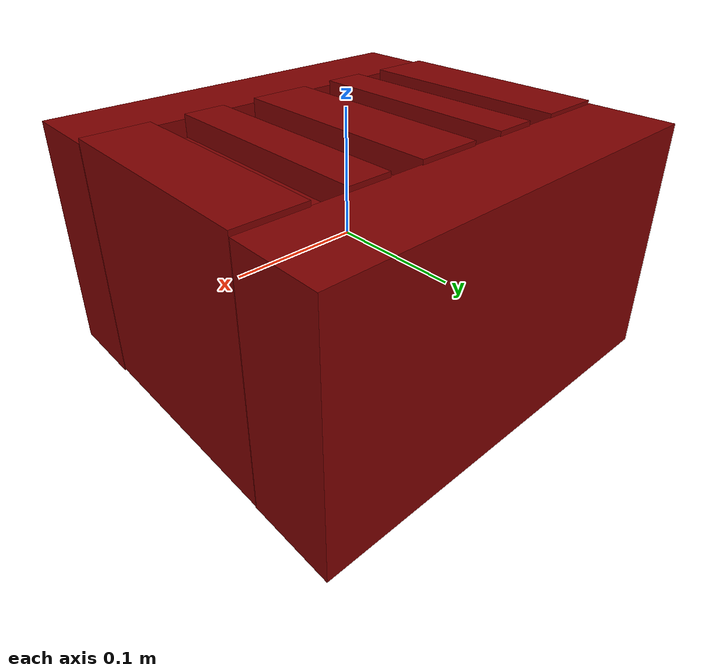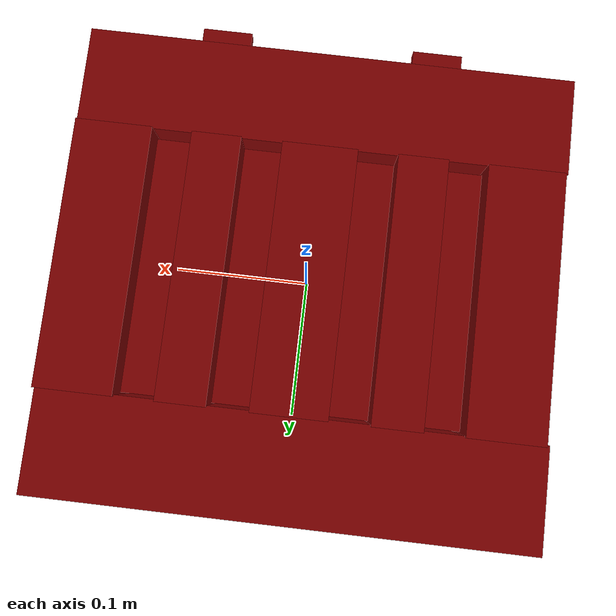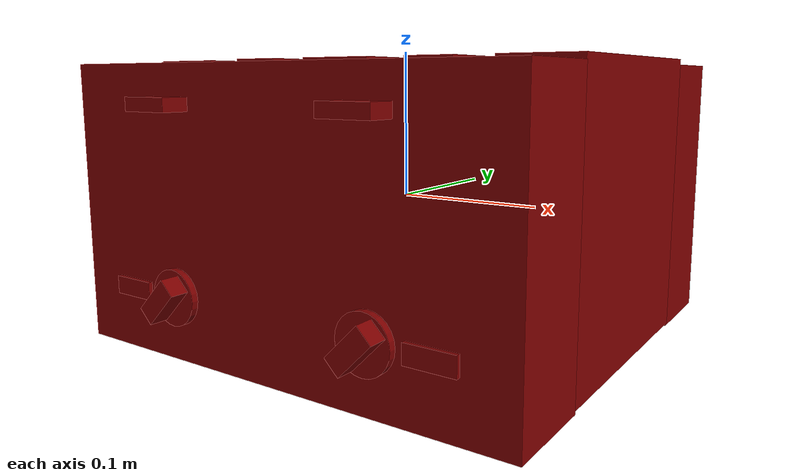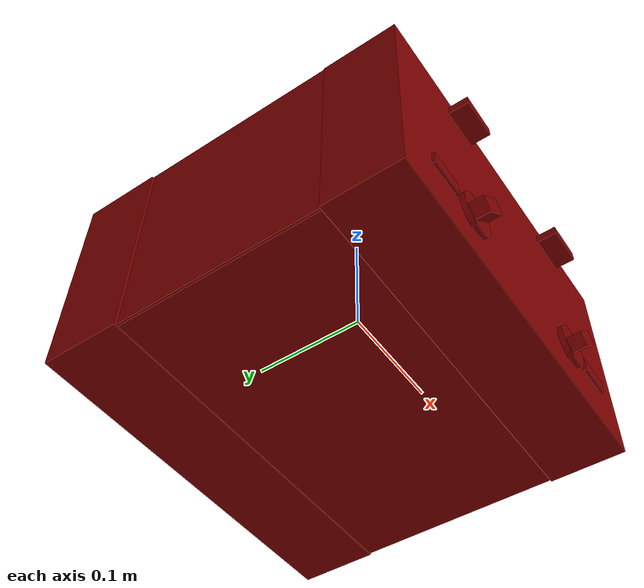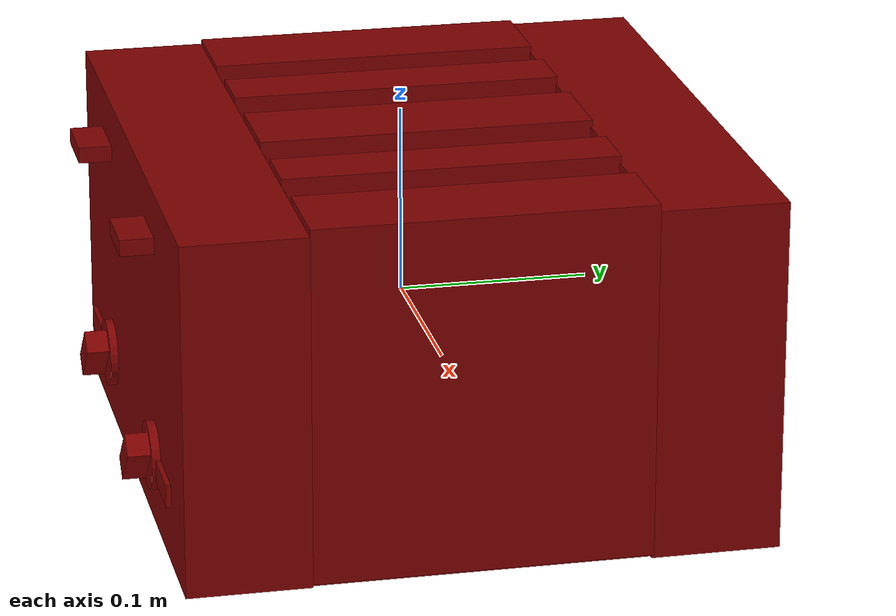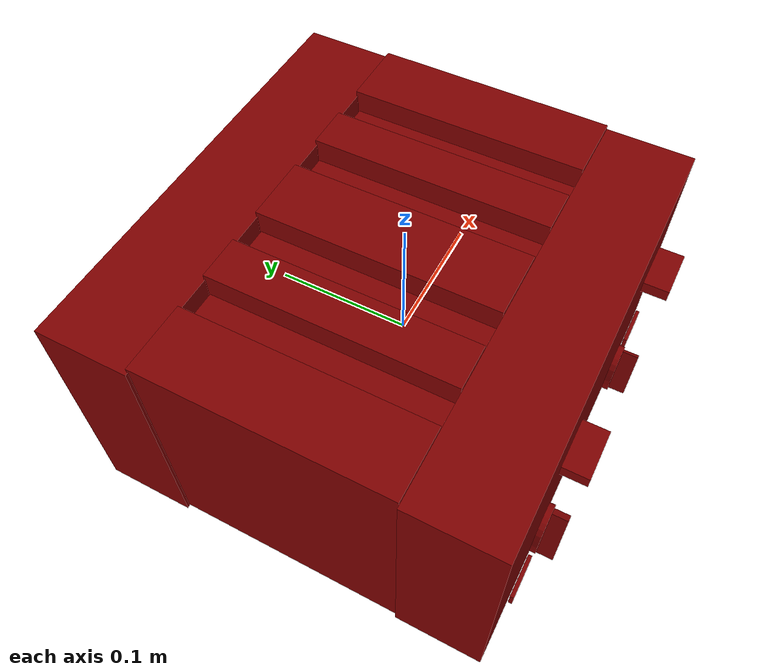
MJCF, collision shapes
<?xml version='1.0' encoding='UTF-8'?>
<mujoco model="model">
  <compiler angle="radian"/>
  <asset>
    <mesh file="visuals/Body001.obj" name="Body001_vis"/>
    <mesh file="visuals/Button001.obj" name="Button001_vis"/>
    <mesh file="visuals/Button002.obj" name="Button002_vis"/>
    <mesh file="visuals/Knob001.obj" name="Knob001_vis"/>
    <mesh file="visuals/Knob002.obj" name="Knob002_vis"/>
    <mesh file="visuals/Lever001.obj" name="Lever001_vis"/>
    <mesh file="visuals/Lever002.obj" name="Lever002_vis"/>
    <texture file="visuals/T_BC001.png" name="Body001_material" type="2d"/>
    <material name="Body001_material" rgba="1 1 1 1.0" texture="Body001_material" shininess="0.2512328028678894" specular="0.3103448502657381"/>
    <texture file="visuals/T_BC001.png" name="Button001_material" type="2d"/>
    <material name="Button001_material" rgba="1 1 1 1.0" texture="Button001_material" shininess="0.2512328028678894" specular="0.3103448502657381"/>
    <texture file="visuals/T_BC001.png" name="Button002_material" type="2d"/>
    <material name="Button002_material" rgba="1 1 1 1.0" texture="Button002_material" shininess="0.2512328028678894" specular="0.3103448502657381"/>
    <texture file="visuals/T_BC001.png" name="Knob001_material" type="2d"/>
    <material name="Knob001_material" rgba="1 1 1 1.0" texture="Knob001_material" shininess="0.2512328028678894" specular="0.3103448502657381"/>
    <texture file="visuals/T_BC001.png" name="Knob002_material" type="2d"/>
    <material name="Knob002_material" rgba="1 1 1 1.0" texture="Knob002_material" shininess="0.2512328028678894" specular="0.3103448502657381"/>
    <texture file="visuals/T_BC001.png" name="Lever001_material" type="2d"/>
    <material name="Lever001_material" rgba="1 1 1 1.0" texture="Lever001_material" shininess="0.2512328028678894" specular="0.3103448502657381"/>
    <texture file="visuals/T_BC001.png" name="Lever002_material" type="2d"/>
    <material name="Lever002_material" rgba="1 1 1 1.0" texture="Lever002_material" shininess="0.2512328028678894" specular="0.3103448502657381"/>
  </asset>
  <default>
    <default class="visual">
      <geom conaffinity="0" contype="0" group="1" type="mesh"/>
    </default>
    <default class="collision">
      <geom group="0" rgba="0.5 0 0 0.5"/>
    </default>
    <default class="spawn">
      <geom group="0" rgba="1 1 1 0.5" contype="0" conaffinity="0"/>
      <site group="0" rgba="1 1 1 0.5"/>
    </default>
    <default class="region">
      <geom group="1" conaffinity="0" contype="0" rgba="0 1 0 0"/>
    </default>
  </default>
  <worldbody>
    <body>
      <body name="object">
        <geom mesh="Body001_vis" type="mesh" solimp="0.998 0.998 0.001" solref="0.001 1" density="100" friction="0.95 0.3 0.1" class="visual" material="Body001_material"/>
        <geom class="collision" type="box" pos="-0.0012560514733195305 0.12971682846546173 -0.0017426153644919395" size="0.16246019303798676 0.03374330326914787 0.09306848794221878" quat="1.0 0.0 0.0 0.0"/>
        <geom class="collision" type="box" pos="-0.0006148911779746413 -0.11116699874401093 -0.0015051248483359814" size="0.16264528036117554 0.03222201019525528 0.0927574634552002" quat="1.0 0.0 0.0 0.0"/>
        <geom class="collision" type="box" pos="0.13630668818950653 0.009045934304594994 0.0010561231756582856" size="0.025313517078757286 0.08799093216657639 0.09395420551300049" quat="1.0 0.0 0.0 0.0"/>
        <geom class="collision" type="box" pos="-0.13585346937179565 0.009045934304594994 0.0007388443918898702" size="0.0253834817558527 0.08799093216657639 0.09363691508769989" quat="1.0 0.0 0.0 0.0"/>
        <geom class="collision" type="box" pos="-0.0678049698472023 0.009045934304594994 0.0010561231756582856" size="0.016553794965147972 0.08799093216657639 0.09395420551300049" quat="1.0 0.0 0.0 0.0"/>
        <geom class="collision" type="box" pos="8.098941179923713e-05 0.009045934304594994 0.0010561231756582856" size="0.024907933548092842 0.08799093216657639 0.09395420551300049" quat="1.0 0.0 0.0 0.0"/>
        <geom class="collision" type="box" pos="0.06841133534908295 0.009045934304594994 0.0010561231756582856" size="0.016349172219634056 0.08799093216657639 0.09395420551300049" quat="1.0 0.0 0.0 0.0"/>
        <geom class="collision" type="box" pos="-5.163844980415888e-05 0.013782797381281853 -0.07307730615139008" size="0.1601170301437378 0.1482696533203125 0.02115466631948948" quat="1.0 0.0 0.0 0.0"/>
        <body name="Button001">
          <joint axis="0.0 1.0 0.0" pos="-0.11383563280105591 -0.14538095891475677 -0.05240114778280258" limited="true" name="Button001_joint" range="0.0 0.003" type="slide" damping="1" frictionloss="1" armature=".01" stiffness="0.05"/>
          <geom mesh="Button001_vis" type="mesh" solimp="0.998 0.998 0.001" solref="0.001 1" density="100" friction="0.95 0.3 0.1" class="visual" material="Button001_material"/>
          <geom class="collision" type="box" pos="-0.11383930593729019 -0.1463705152273178 -0.052384551614522934" size="0.0158424973487854 0.0013096478069201112 0.0058203404769301414" quat="1.0 0.0 0.0 0.0"/>
        </body>
        <body name="Button002">
          <joint axis="0.0 1.0 0.0" pos="0.11383558809757233 -0.14538095891475677 -0.05240114778280258" limited="true" name="Button002_joint" range="0.0 0.003" type="slide" damping="1" frictionloss="1" armature=".01" stiffness="0.05"/>
          <geom mesh="Button002_vis" type="mesh" solimp="0.998 0.998 0.001" solref="0.001 1" density="100" friction="0.95 0.3 0.1" class="visual" material="Button002_material"/>
          <geom class="collision" type="box" pos="0.1138099655508995 -0.14624431729316711 -0.05224185809493065" size="0.01586652547121048 0.001351955346763134 0.006012034602463245" quat="1.0 0.0 0.0 0.0"/>
        </body>
        <body name="Knob001">
          <joint axis="0.0 1.0 0.0" pos="-0.07382764667272568 -0.14924290776252747 -0.052457500249147415" limited="true" name="Knob001_joint" range="0.0 4.625122517784973" type="hinge" damping="0.05" armature="0.001" springref="-0.01"/>
          <geom mesh="Knob001_vis" type="mesh" solimp="0.998 0.998 0.001" solref="0.001 1" density="100" friction="0.95 0.3 0.1" class="visual" material="Knob001_material"/>
          <geom class="collision" type="cylinder" pos="-0.07373664528131485 -0.146297425031662 -0.05240565538406372" size="0.018016349524259567 0.002148986328393221" quat="0.7071067094802856 0.7071068286895752 0.0 0.0"/>
          <geom class="collision" type="box" pos="-0.0743117481470108 -0.15460531413555145 -0.052469756454229355" size="0.006345165893435478 0.00603867881000042 0.014894815161824226" quat="0.9238795042037964 0.0 0.3826834559440613 0.0"/>
        </body>
        <body name="Knob002">
          <joint axis="0.0 1.0 0.0" pos="0.07377184182405472 -0.14924290776252747 -0.052457500249147415" limited="true" name="Knob002_joint" range="0.0 4.625122517784973" type="hinge" damping="0.05" armature="0.001" springref="-0.01"/>
          <geom mesh="Knob002_vis" type="mesh" solimp="0.998 0.998 0.001" solref="0.001 1" density="100" friction="0.95 0.3 0.1" class="visual" material="Knob002_material"/>
          <geom class="collision" type="cylinder" pos="0.07379748672246933 -0.14628790318965912 -0.0523960217833519" size="0.0178628321737051 0.0022610612213611603" quat="0.7071067094802856 0.7071068286895752 0.0 0.0"/>
          <geom class="collision" type="box" pos="0.07394041121006012 -0.15460531413555145 -0.052469756454229355" size="0.006345165893435478 0.00603867881000042 0.014894815161824226" quat="0.9238795042037964 0.0 0.3826834559440613 0.0"/>
        </body>
        <body name="Lever001">
          <joint axis="0.0 0.0 -1.0" pos="-0.07383695244789124 -0.15048380196094513 0.06941588968038559" limited="true" name="Lever001_joint" range="0.0 0.085" type="slide" damping="1" frictionloss="1" armature=".01" stiffness="1" springref="-1"/>
          <geom mesh="Lever001_vis" type="mesh" solimp="0.998 0.998 0.001" solref="0.001 1" density="100" friction="0.95 0.3 0.1" class="visual" material="Lever001_material"/>
          <geom class="collision" type="box" pos="-0.07362759113311768 -0.1536025106906891 0.06688357889652252" size="0.017076320946216583 0.0087033212184906 0.00428627897053957" quat="1.0 0.0 0.0 0.0" name="sideL_lever_knob"/>
          <geom class="collision" type="box" pos="-0.037956517189741135 0.009057892486453056 0.07676006108522415" size="0.012499993667006493 0.08546552807092667 0.0013593488838523626" quat="1.0 0.0 0.0 0.0" name="sideL_slotR_floor"/>
          <geom class="collision" type="box" pos="-0.09746018797159195 0.009057892486453056 0.07676006108522415" size="0.012499996460974216 0.08546552807092667 0.0013593488838523626" quat="1.0 0.0 0.0 0.0" name="sideL_slotL_floor"/>
        </body>
        <body name="Lever002">
          <joint axis="0.0 0.0 -1.0" pos="0.07383693754673004 -0.15048380196094513 0.06941588968038559" limited="true" name="Lever002_joint" range="0.0 0.085" type="slide" damping="1" frictionloss="1" armature=".01" stiffness="1" springref="-1"/>
          <geom mesh="Lever002_vis" type="mesh" solimp="0.998 0.998 0.001" solref="0.001 1" density="100" friction="0.95 0.3 0.1" class="visual" material="Lever002_material"/>
          <geom class="collision" type="box" pos="0.074133962392807 -0.1536025106906891 0.06688357889652252" size="0.01707630231976509 0.008703310042619705 0.004286275710910559" quat="1.0 0.0 0.0 0.0" name="sideR_lever_knob"/>
          <geom class="collision" type="box" pos="0.09799081832170486 0.009057892486453056 0.07676006108522415" size="0.01249999925494194 0.08546552807092667 0.0013593488838523626" quat="1.0 0.0 0.0 0.0" name="sideR_slotR_floor"/>
          <geom class="collision" type="box" pos="0.03848715126514435 0.009057892486453056 0.07676006108522415" size="0.01249999925494194 0.08546552807092667 0.0013593488838523626" quat="1.0 0.0 0.0 0.0" name="sideR_slotL_floor"/>
        </body>
        <geom class="region" name="reg_main" type="box" pos="3.725290298461914e-09 0.009046092629432678 0.0" size="0.16120414435863495 0.15300731360912323 0.09423209726810455"/>
      </body>
    </body>
  </worldbody>
  <actuator>
    <motor name="Button001_joint_actuator" joint="Button001_joint" gear="0.5"/>
    <motor name="Button002_joint_actuator" joint="Button002_joint" gear="0.5"/>
    <motor name="Knob001_joint_actuator" joint="Knob001_joint" gear="0.5"/>
    <motor name="Knob002_joint_actuator" joint="Knob002_joint" gear="0.5"/>
    <motor name="Lever001_joint_actuator" joint="Lever001_joint" gear="0.5"/>
    <motor name="Lever002_joint_actuator" joint="Lever002_joint" gear="0.5"/>
  </actuator>
</mujoco>
